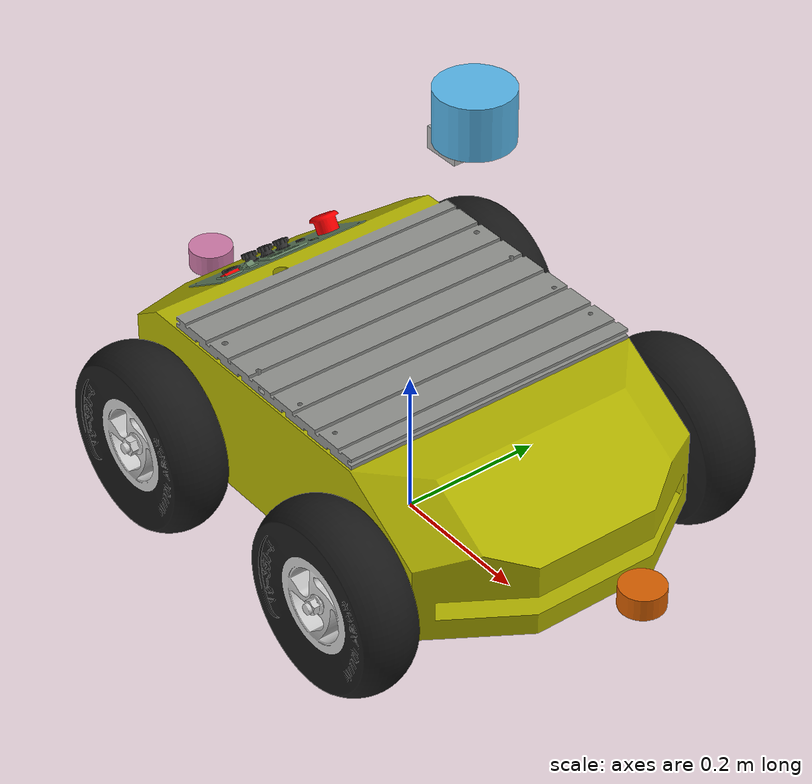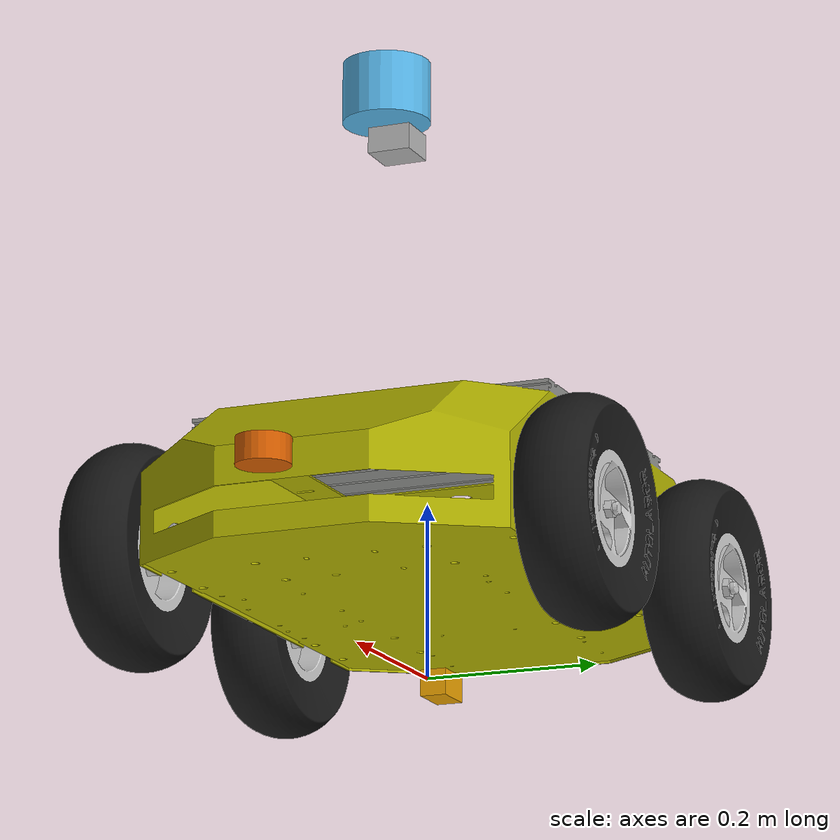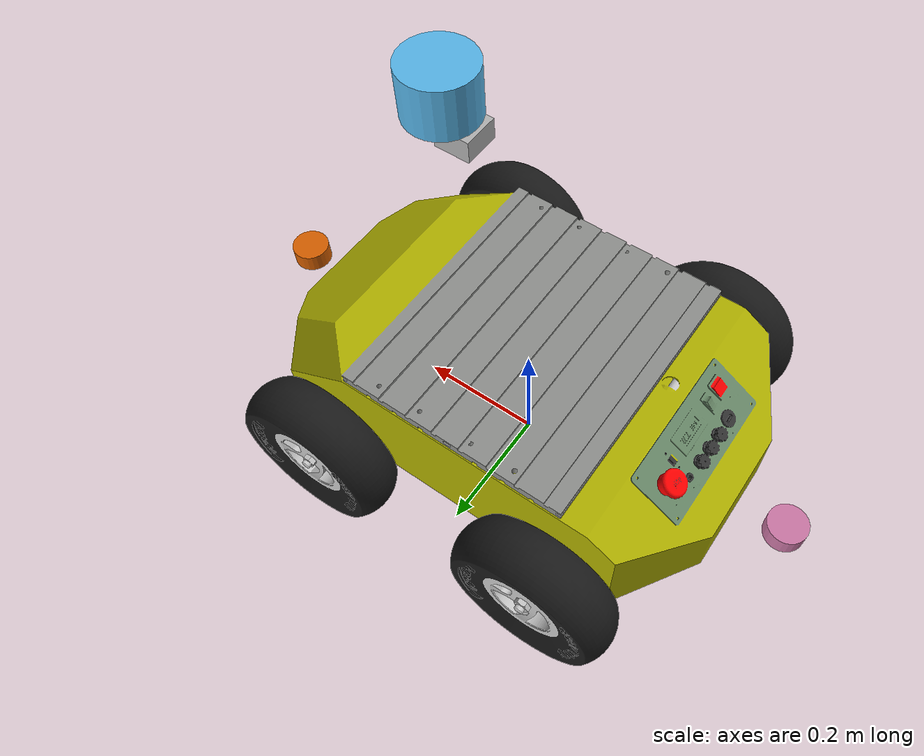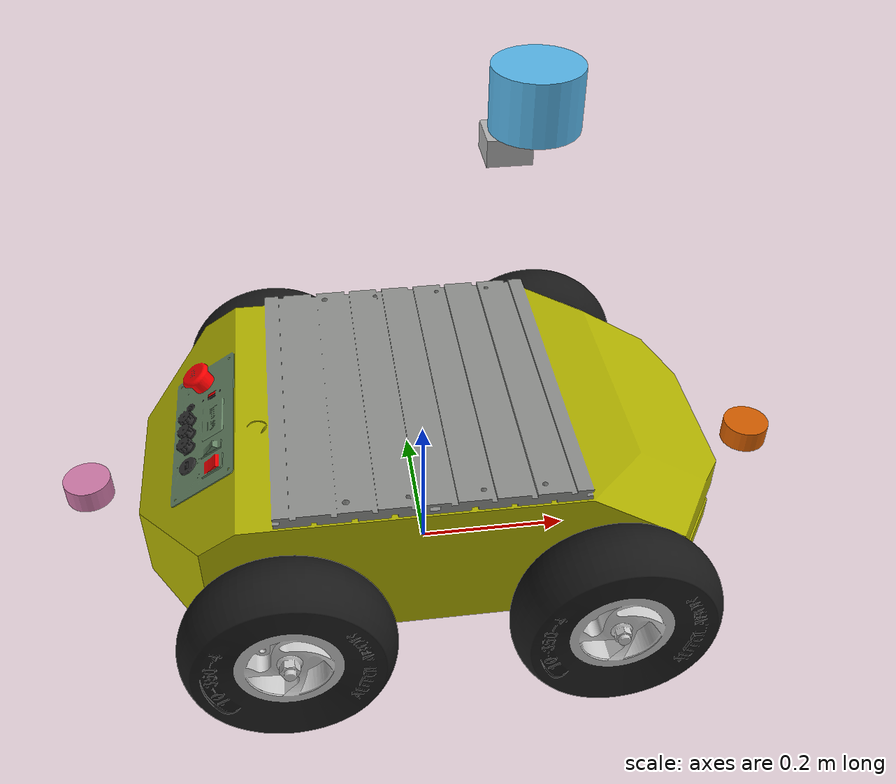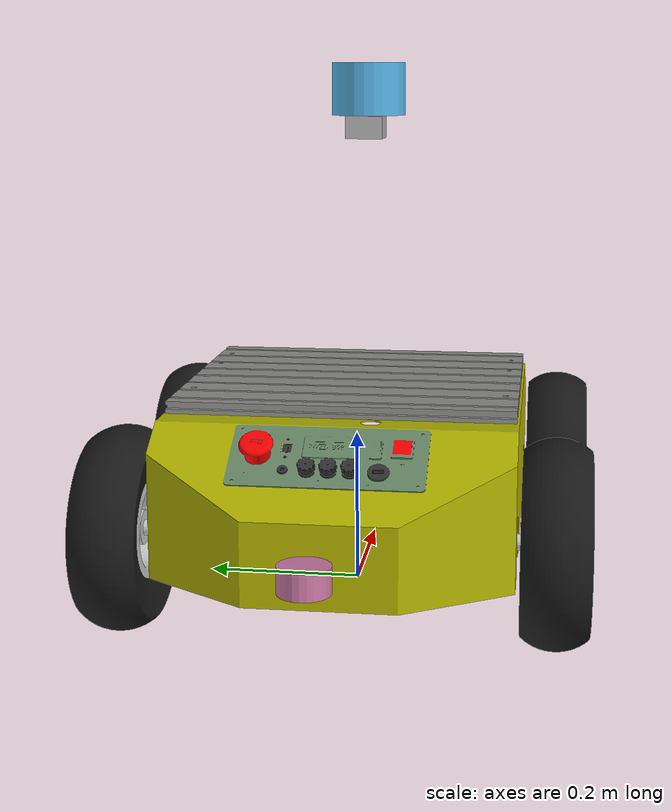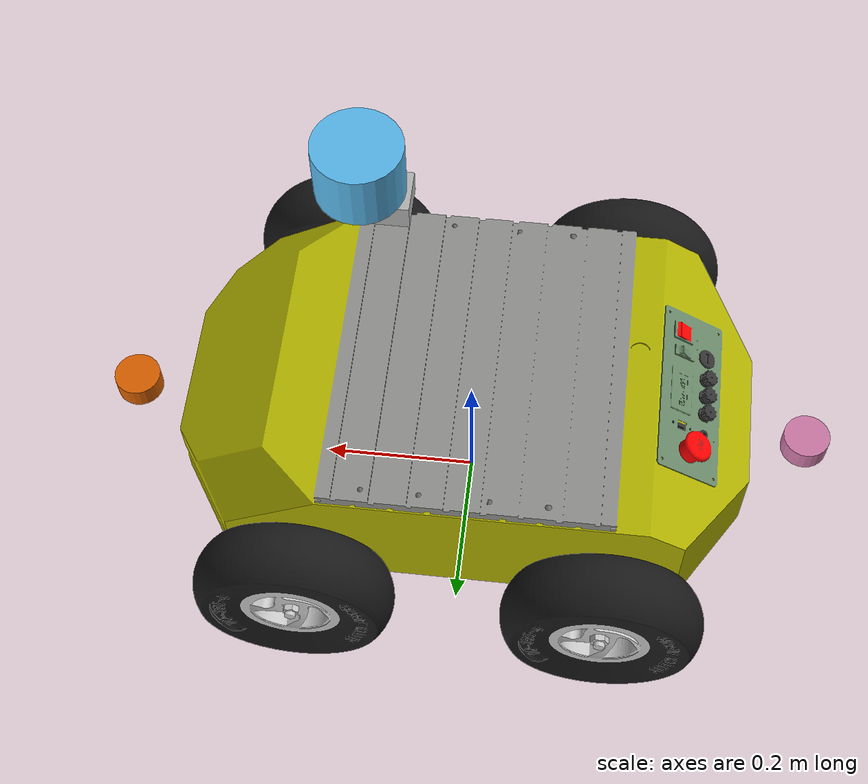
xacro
<?xml version="1.0"?>
	<!-- Revolute-Revolute Manipulator -->
	<robot name="autolabor_pro1" xmlns:xacro="http://www.ros.org/wiki/xacro">

	<xacro:property name="PI" value="3.1415926535897931"/>
	<xacro:property name="shaft_spacing_f" value="0.19649" />
	<xacro:property name="shaft_spacing_b" value="0.18988" />
	<xacro:property name="wheel_spacing_2" value="0.2643" />
	<xacro:property name="height" value="0.11913" />
	<xacro:arg name="lidar2d" default="fslidar" />
	<xacro:arg name="lidar3d" default="rs16" />
	<xacro:arg name="chassis" default="M1" />
	<!-- Base Link -->
	<link name="base_link">
		<collision>
			<origin xyz="0 0 0.18288" rpy="0 0 0"/>
			<geometry>
				<box size="0.7248 0.4302 0.195"/>
			</geometry>
		</collision>

		<visual>
			<origin xyz="0 0 0" rpy="0 0 0"/>
			<geometry>
				<mesh filename="package://autolabor_description/meshes/pro1_body_color.dae"/>
			</geometry>
		</visual>

	</link>

	<link name="left_front_wheel">
		<collision>
			<origin xyz="0 0 0" rpy="1.5708 0 0"/>
			<geometry>
				<cylinder length="0.0822" radius="0.127"/>
			</geometry>
		</collision>

		<visual>
			<origin xyz="0 0 0" rpy="0 0 0"/>
			<geometry>
				<mesh filename="package://autolabor_description/meshes/pro1_wheel_color.dae"/>
			</geometry>
		</visual>

		<inertial>
			<origin xyz="0 0 0" rpy="0 0 0"/>
			<mass value="1.5"/>
			<inertia ixx="0.013" ixy="0.0" ixz="0.0" iyy="0.0074" iyz="0.0" izz="0.0074"/>
		</inertial>
	</link>

	<link name="left_back_wheel">
		<collision>
			<origin xyz="0 0 0" rpy="1.5708 0 0"/>
			<geometry>
				<cylinder length="0.0822" radius="0.127"/>
			</geometry>
		</collision>

		<visual>
			<origin xyz="0 0 0" rpy="0 0 0"/>
			<geometry>
				<mesh filename="package://autolabor_description/meshes/pro1_wheel_color.dae"/>
			</geometry>
		</visual>

		<inertial>
			<origin xyz="0 0 0" rpy="0 0 0"/>
			<mass value="1.5"/>
			<inertia ixx="0.013" ixy="0.0" ixz="0.0" iyy="0.0074" iyz="0.0" izz="0.0074"/>
		</inertial>
	</link>

	<link name="right_front_wheel">
		<collision>
			<origin xyz="0 0 0" rpy="1.5708 0 0"/>
			<geometry>
				<cylinder length="0.0822" radius="0.127"/>
			</geometry>
		</collision>

		<visual>
			<origin xyz="0 0 0" rpy="0 0 ${PI}"/>
			<geometry>
				<mesh filename="package://autolabor_description/meshes/pro1_wheel_color.dae"/>
			</geometry>
		</visual>

		<inertial>
			<origin xyz="0 0 0" rpy="0 0 ${PI}"/>
			<mass value="1.5"/>
			<inertia ixx="0.013" ixy="0.0" ixz="0.0" iyy="0.0074" iyz="0.0" izz="0.0074"/>
		</inertial>
	</link>

	<link name="right_back_wheel">
		<collision>
			<origin xyz="0 0 0" rpy="1.5708 0 0"/>
			<geometry>
				<cylinder length="0.0822" radius="0.127"/>
			</geometry>
		</collision>

		<visual>
			<origin xyz="0 0 0" rpy="0 0 ${PI}"/>
			<geometry>
				<mesh filename="package://autolabor_description/meshes/pro1_wheel_color.dae"/>
			</geometry>
		</visual>

		<inertial>
			<origin xyz="0 0 0" rpy="0 0 ${PI}"/>
			<mass value="1.5"/>
			<inertia ixx="0.013" ixy="0.0" ixz="0.0" iyy="0.0074" iyz="0.0" izz="0.0074"/>
		</inertial>
	</link>

	<link name="lidar_front">
		<collision>
			<origin xyz="0 0 0" rpy="0 0 0"/>
			<geometry>
				<cylinder length="0.05" radius="0.03"/>
			</geometry>
		</collision>

		<visual>
			<origin xyz="0 0 0" rpy="0 0 0"/>
			<geometry>
				<cylinder length="0.03" radius="0.03"/>
			</geometry>
		</visual>

		<inertial>
			<origin xyz="0 0 0" rpy="0 0 0"/>
			<mass value="0.1"/>
			<inertia ixx="0.0074" ixy="0.0" ixz="0.0" iyy="0.0074" iyz="0.0" izz="0.013"/>
		</inertial>
	</link>

	<link name="lidar_back">
		<collision>
			<origin xyz="0 0 0" rpy="0 0 0"/>
			<geometry>
				<cylinder length="0.03" radius="0.03"/>
			</geometry>
		</collision>

		<visual>
			<origin xyz="0 0 0" rpy="0 0 0"/>
			<geometry>
				<cylinder length="0.03" radius="0.03"/>
			</geometry>
		</visual>

		<inertial>
			<origin xyz="0 0 0" rpy="0 0 0"/>
			<mass value="0.1"/>
			<inertia ixx="0.0074" ixy="0.0" ixz="0.0" iyy="0.0074" iyz="0.0" izz="0.013"/>
		</inertial>
	</link>

	<link name="tag">
		<collision>
			<origin xyz="0 0 0" rpy="0 0 0"/>
			<geometry>
				<box size="0.05 0.05 0.03"/>
			</geometry>
		</collision>

		<visual>
			<origin xyz="0 0 0" rpy="0 0 0"/>
			<geometry>
				<box size="0.05 0.05 0.03"/>
			</geometry>
		</visual>

		<inertial>
			<origin xyz="0 0 0" rpy="0 0 0"/>
			<mass value="0.1"/>
			<inertia ixx="0.0074" ixy="0.0" ixz="0.0" iyy="0.0074" iyz="0.0" izz="0.013"/>
		</inertial>
	</link>

	<link name="imu_link">
		<collision>
			<origin xyz="0 0 0" rpy="0 0 0"/>
			<geometry>
				<box size="0.05 0.03 0.03"/>
			</geometry>
		</collision>

		<visual>
			<origin xyz="0 0 0" rpy="0 0 0"/>
			<geometry>
				<box size="0.05 0.03 0.03"/>
			</geometry>
		</visual>

		<inertial>
			<origin xyz="0 0 0" rpy="0 0 0"/>
			<mass value="0.1"/>
			<inertia ixx="0.0013" ixy="0.0" ixz="0.0" iyy="0.0074" iyz="0.0" izz="0.074"/>
		</inertial>
	</link>

	<link name="rslidar">
		<collision>
			<origin xyz="0 0 0" rpy="0 0 0"/>
			<geometry>
				<cylinder length="0.07" radius="0.05"/>
			</geometry>
		</collision>

		<visual>
			<origin xyz="0 0 0" rpy="0 0 0"/>
			<geometry>
				<cylinder length="0.07" radius="0.05"/>
			</geometry>
		</visual>

		<inertial>
			<origin xyz="0 0 0" rpy="0 0 0"/>
			<mass value="0.1"/>
			<inertia ixx="0.012" ixy="0.0" ixz="0.0" iyy="0.012" iyz="0.0" izz="0.02"/>
		</inertial>
	</link>

	<link name="velodyne">
		<collision>
			<origin xyz="0 0 0" rpy="0 0 0"/>
			<geometry>
				<cylinder length="0.07" radius="0.05"/>
			</geometry>
		</collision>

		<visual>
			<origin xyz="0 0 0" rpy="0 0 0"/>
			<geometry>
				<cylinder length="0.07" radius="0.05"/>
			</geometry>
		</visual>

		<inertial>
			<origin xyz="0 0 0" rpy="0 0 0"/>
			<mass value="0.1"/>
			<inertia ixx="0.012" ixy="0.0" ixz="0.0" iyy="0.012" iyz="0.0" izz="0.02"/>
		</inertial>
	</link>

	<joint name="joint_left_front" type="continuous">
		<parent link="base_link"/>
		<child link="left_front_wheel"/>
		<origin xyz="${shaft_spacing_f} ${wheel_spacing_2} ${height}" rpy="0 0 0"/>
		<axis xyz="0 1 0"/>
		<dynamics damping="0.7"/>
	</joint>

	<joint name="joint_left_back" type="continuous">
		<parent link="base_link"/>
		<child link="left_back_wheel"/>
		<origin xyz="-${shaft_spacing_b} ${wheel_spacing_2} ${height}" rpy="0 0 0"/>
		<axis xyz="0 1 0"/>
		<dynamics damping="0.7"/>
	</joint>

	<joint name="joint_right_front" type="continuous">
		<parent link="base_link"/>
		<child link="right_front_wheel"/>
		<origin xyz="${shaft_spacing_f} -${wheel_spacing_2} ${height}" rpy="0 0 0"/>
		<axis xyz="0 1 0"/>
		<dynamics damping="0.7"/>
	</joint>

	<joint name="joint_right_back" type="continuous">
		<parent link="base_link"/>
		<child link="right_back_wheel"/>
		<origin xyz="-${shaft_spacing_b} -${wheel_spacing_2} ${height}" rpy="0 0 0"/>
		<axis xyz="0 1 0"/>
		<dynamics damping="0.7"/>
	</joint>

	<xacro:if value="${'$(arg lidar2d)' == 'fslidar'}">
		<joint name="laser_front_link_joint" type="fixed">
			<parent link="base_link"/>
			<child link="lidar_front"/>
			<origin xyz="0.4435 0.0 0.15" rpy="3.14 0.0 0.0"/>
		</joint>

		<joint name="laser_back_link_joint" type="fixed">
			<parent link="base_link"/>
			<child link="lidar_back"/>
			<origin xyz="-0.4355 0.0 0.15" rpy="3.14 0.0 3.14"/>
		</joint>
	</xacro:if>

	<xacro:if value="${'$(arg chassis)' == 'AP1'}">
            <xacro:if value="${'$(arg lidar2d)' == 'ldlidar'}">
            		<joint name="laser_front_link_joint" type="fixed">
            			<parent link="base_link"/>
            			<child link="lidar_front"/>
            			<origin xyz="0.4435 0.0 0.15" rpy="3.14 0.0 1.57"/>
            		</joint>

            		<joint name="laser_back_link_joint" type="fixed">
            			<parent link="base_link"/>
            			<child link="lidar_back"/>
            			<origin xyz="-0.4355 0.0 0.15" rpy="3.14 0.0 -1.57"/>
            		</joint>
            </xacro:if>
    </xacro:if>

  	 <xacro:if value="${'$(arg chassis)' == 'M1'}">
              <xacro:if value="${'$(arg lidar2d)' == 'ldlidar'}">
              		<joint name="laser_front_link_joint" type="fixed">
              			<parent link="base_link"/>
              			<child link="lidar_front"/>
              			<origin xyz="0.316 0.0 0.15" rpy="0 0.0 -1.57"/>
              		</joint>

              		<joint name="laser_back_link_joint" type="fixed">
              			<parent link="base_link"/>
              			<child link="lidar_back"/>
              			<origin xyz="-0.316 0.0 0.15" rpy="0 0.0 1.57"/>
              		</joint>
              	</xacro:if>
     </xacro:if>

	<joint name="tag_link_joint" type="fixed">
		<parent link="base_link"/>
		<child link="tag"/>
		<origin xyz="0.09 0.0 0.60"/>
	</joint>

	<joint name="imu_link_joint" type="fixed">
		<parent link="base_link"/>
		<child link="imu_link"/>
		<origin xyz="-0.04 0.0 0.00" rpy="0.0 0.0 0.0"/>
	</joint>

	<joint name="rslidar_link_joint" type="fixed">
		<parent link="base_link"/>
		<child link="rslidar"/>
		<origin xyz="0.12 0.0 0.65" rpy="0.0 0.0 0.0"/>
	</joint>

	<joint name="velodyne_link_joint" type="fixed">
		<parent link="base_link"/>
		<child link="velodyne"/>
		<origin xyz="0.12 0.0 0.65" rpy="0.0 0.0 0.0"/>
	</joint>

</robot>
